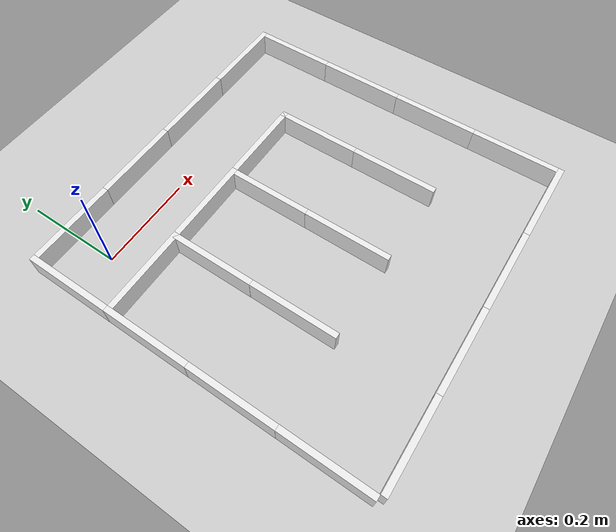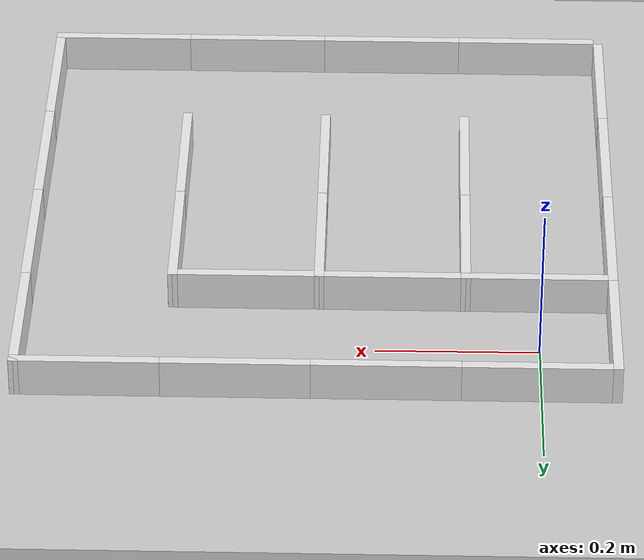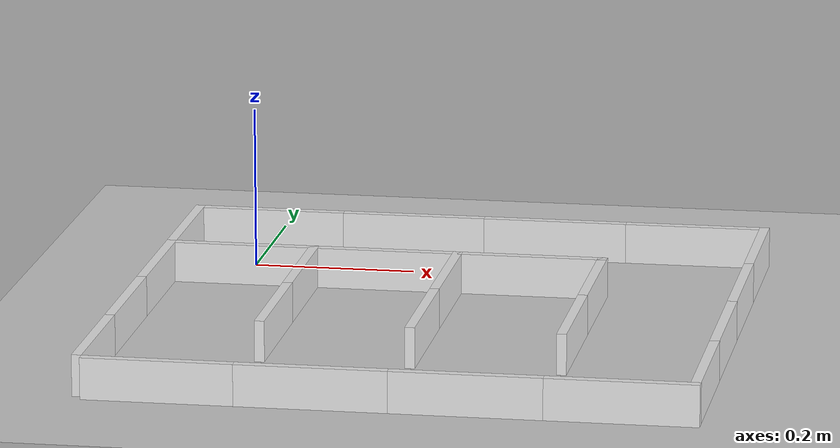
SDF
<sdf version="1.4">
 <world name="default">
  <include><uri>model://ground_plane</uri></include>
  <model name="wall">
   <pose>-0.090 0.006 0.025 0 0 1.57</pose>
   <link name="link">
    <inertial>
     <mass>10</mass>
     <inertia><ixx>1</ixx><ixy>0</ixy><ixz>0</ixz><iyy>1</iyy><iyz>0</iyz><izz>1</izz></inertia>
    </inertial>
    <collision name="collision"><geometry><box><size>0.180 0.012 0.050</size></box></geometry></collision>
    <visual name="visual">
     <geometry><box><size>0.180 0.012 0.050</size></box></geometry>
     <material>
      <script><uri>file://media/materials/scripts/gazebo.material</uri><name>Gazebo/White</name></script>
     </material>
    </visual>
    <velocity_decay><linear>0</linear><angular>0</angular></velocity_decay>
   </link>
   <static>1</static>
  </model>
  <model name="wall">
   <pose>-0.090 -0.174 0.025 0 0 1.57</pose>
   <link name="link">
    <inertial>
     <mass>10</mass>
     <inertia><ixx>1</ixx><ixy>0</ixy><ixz>0</ixz><iyy>1</iyy><iyz>0</iyz><izz>1</izz></inertia>
    </inertial>
    <collision name="collision"><geometry><box><size>0.180 0.012 0.050</size></box></geometry></collision>
    <visual name="visual">
     <geometry><box><size>0.180 0.012 0.050</size></box></geometry>
     <material>
      <script><uri>file://media/materials/scripts/gazebo.material</uri><name>Gazebo/White</name></script>
     </material>
    </visual>
    <velocity_decay><linear>0</linear><angular>0</angular></velocity_decay>
   </link>
   <static>1</static>
  </model>
  <model name="wall">
   <pose>-0.090 -0.354 0.025 0 0 1.57</pose>
   <link name="link">
    <inertial>
     <mass>10</mass>
     <inertia><ixx>1</ixx><ixy>0</ixy><ixz>0</ixz><iyy>1</iyy><iyz>0</iyz><izz>1</izz></inertia>
    </inertial>
    <collision name="collision"><geometry><box><size>0.180 0.012 0.050</size></box></geometry></collision>
    <visual name="visual">
     <geometry><box><size>0.180 0.012 0.050</size></box></geometry>
     <material>
      <script><uri>file://media/materials/scripts/gazebo.material</uri><name>Gazebo/White</name></script>
     </material>
    </visual>
    <velocity_decay><linear>0</linear><angular>0</angular></velocity_decay>
   </link>
   <static>1</static>
  </model>
  <model name="wall">
   <pose>-0.090 -0.534 0.025 0 0 1.57</pose>
   <link name="link">
    <inertial>
     <mass>10</mass>
     <inertia><ixx>1</ixx><ixy>0</ixy><ixz>0</ixz><iyy>1</iyy><iyz>0</iyz><izz>1</izz></inertia>
    </inertial>
    <collision name="collision"><geometry><box><size>0.180 0.012 0.050</size></box></geometry></collision>
    <visual name="visual">
     <geometry><box><size>0.180 0.012 0.050</size></box></geometry>
     <material>
      <script><uri>file://media/materials/scripts/gazebo.material</uri><name>Gazebo/White</name></script>
     </material>
    </visual>
    <velocity_decay><linear>0</linear><angular>0</angular></velocity_decay>
   </link>
   <static>1</static>
  </model>
  <model name="wall">
   <pose>0.006 0.090 0.025 0 0 0</pose>
   <link name="link">
    <inertial>
     <mass>10</mass>
     <inertia><ixx>1</ixx><ixy>0</ixy><ixz>0</ixz><iyy>1</iyy><iyz>0</iyz><izz>1</izz></inertia>
    </inertial>
    <collision name="collision"><geometry><box><size>0.180 0.012 0.050</size></box></geometry></collision>
    <visual name="visual">
     <geometry><box><size>0.180 0.012 0.050</size></box></geometry>
     <material>
      <script><uri>file://media/materials/scripts/gazebo.material</uri><name>Gazebo/White</name></script>
     </material>
    </visual>
    <velocity_decay><linear>0</linear><angular>0</angular></velocity_decay>
   </link>
   <static>1</static>
  </model>
  <model name="wall">
   <pose>0.186 0.090 0.025 0 0 0</pose>
   <link name="link">
    <inertial>
     <mass>10</mass>
     <inertia><ixx>1</ixx><ixy>0</ixy><ixz>0</ixz><iyy>1</iyy><iyz>0</iyz><izz>1</izz></inertia>
    </inertial>
    <collision name="collision"><geometry><box><size>0.180 0.012 0.050</size></box></geometry></collision>
    <visual name="visual">
     <geometry><box><size>0.180 0.012 0.050</size></box></geometry>
     <material>
      <script><uri>file://media/materials/scripts/gazebo.material</uri><name>Gazebo/White</name></script>
     </material>
    </visual>
    <velocity_decay><linear>0</linear><angular>0</angular></velocity_decay>
   </link>
   <static>1</static>
  </model>
  <model name="wall">
   <pose>0.366 0.090 0.025 0 0 0</pose>
   <link name="link">
    <inertial>
     <mass>10</mass>
     <inertia><ixx>1</ixx><ixy>0</ixy><ixz>0</ixz><iyy>1</iyy><iyz>0</iyz><izz>1</izz></inertia>
    </inertial>
    <collision name="collision"><geometry><box><size>0.180 0.012 0.050</size></box></geometry></collision>
    <visual name="visual">
     <geometry><box><size>0.180 0.012 0.050</size></box></geometry>
     <material>
      <script><uri>file://media/materials/scripts/gazebo.material</uri><name>Gazebo/White</name></script>
     </material>
    </visual>
    <velocity_decay><linear>0</linear><angular>0</angular></velocity_decay>
   </link>
   <static>1</static>
  </model>
  <model name="wall">
   <pose>0.546 0.090 0.025 0 0 0</pose>
   <link name="link">
    <inertial>
     <mass>10</mass>
     <inertia><ixx>1</ixx><ixy>0</ixy><ixz>0</ixz><iyy>1</iyy><iyz>0</iyz><izz>1</izz></inertia>
    </inertial>
    <collision name="collision"><geometry><box><size>0.180 0.012 0.050</size></box></geometry></collision>
    <visual name="visual">
     <geometry><box><size>0.180 0.012 0.050</size></box></geometry>
     <material>
      <script><uri>file://media/materials/scripts/gazebo.material</uri><name>Gazebo/White</name></script>
     </material>
    </visual>
    <velocity_decay><linear>0</linear><angular>0</angular></velocity_decay>
   </link>
   <static>1</static>
  </model>
  <model name="wall">
   <pose>0.630 0.006 0.025 0 0 1.57</pose>
   <link name="link">
    <inertial>
     <mass>10</mass>
     <inertia><ixx>1</ixx><ixy>0</ixy><ixz>0</ixz><iyy>1</iyy><iyz>0</iyz><izz>1</izz></inertia>
    </inertial>
    <collision name="collision"><geometry><box><size>0.180 0.012 0.050</size></box></geometry></collision>
    <visual name="visual">
     <geometry><box><size>0.180 0.012 0.050</size></box></geometry>
     <material>
      <script><uri>file://media/materials/scripts/gazebo.material</uri><name>Gazebo/White</name></script>
     </material>
    </visual>
    <velocity_decay><linear>0</linear><angular>0</angular></velocity_decay>
   </link>
   <static>1</static>
  </model>
  <model name="wall">
   <pose>0.630 -0.174 0.025 0 0 1.57</pose>
   <link name="link">
    <inertial>
     <mass>10</mass>
     <inertia><ixx>1</ixx><ixy>0</ixy><ixz>0</ixz><iyy>1</iyy><iyz>0</iyz><izz>1</izz></inertia>
    </inertial>
    <collision name="collision"><geometry><box><size>0.180 0.012 0.050</size></box></geometry></collision>
    <visual name="visual">
     <geometry><box><size>0.180 0.012 0.050</size></box></geometry>
     <material>
      <script><uri>file://media/materials/scripts/gazebo.material</uri><name>Gazebo/White</name></script>
     </material>
    </visual>
    <velocity_decay><linear>0</linear><angular>0</angular></velocity_decay>
   </link>
   <static>1</static>
  </model>
  <model name="wall">
   <pose>0.630 -0.354 0.025 0 0 1.57</pose>
   <link name="link">
    <inertial>
     <mass>10</mass>
     <inertia><ixx>1</ixx><ixy>0</ixy><ixz>0</ixz><iyy>1</iyy><iyz>0</iyz><izz>1</izz></inertia>
    </inertial>
    <collision name="collision"><geometry><box><size>0.180 0.012 0.050</size></box></geometry></collision>
    <visual name="visual">
     <geometry><box><size>0.180 0.012 0.050</size></box></geometry>
     <material>
      <script><uri>file://media/materials/scripts/gazebo.material</uri><name>Gazebo/White</name></script>
     </material>
    </visual>
    <velocity_decay><linear>0</linear><angular>0</angular></velocity_decay>
   </link>
   <static>1</static>
  </model>
  <model name="wall">
   <pose>0.630 -0.534 0.025 0 0 1.57</pose>
   <link name="link">
    <inertial>
     <mass>10</mass>
     <inertia><ixx>1</ixx><ixy>0</ixy><ixz>0</ixz><iyy>1</iyy><iyz>0</iyz><izz>1</izz></inertia>
    </inertial>
    <collision name="collision"><geometry><box><size>0.180 0.012 0.050</size></box></geometry></collision>
    <visual name="visual">
     <geometry><box><size>0.180 0.012 0.050</size></box></geometry>
     <material>
      <script><uri>file://media/materials/scripts/gazebo.material</uri><name>Gazebo/White</name></script>
     </material>
    </visual>
    <velocity_decay><linear>0</linear><angular>0</angular></velocity_decay>
   </link>
   <static>1</static>
  </model>
  <model name="wall">
   <pose>0.006 -0.630 0.025 0 0 0</pose>
   <link name="link">
    <inertial>
     <mass>10</mass>
     <inertia><ixx>1</ixx><ixy>0</ixy><ixz>0</ixz><iyy>1</iyy><iyz>0</iyz><izz>1</izz></inertia>
    </inertial>
    <collision name="collision"><geometry><box><size>0.180 0.012 0.050</size></box></geometry></collision>
    <visual name="visual">
     <geometry><box><size>0.180 0.012 0.050</size></box></geometry>
     <material>
      <script><uri>file://media/materials/scripts/gazebo.material</uri><name>Gazebo/White</name></script>
     </material>
    </visual>
    <velocity_decay><linear>0</linear><angular>0</angular></velocity_decay>
   </link>
   <static>1</static>
  </model>
  <model name="wall">
   <pose>0.186 -0.630 0.025 0 0 0</pose>
   <link name="link">
    <inertial>
     <mass>10</mass>
     <inertia><ixx>1</ixx><ixy>0</ixy><ixz>0</ixz><iyy>1</iyy><iyz>0</iyz><izz>1</izz></inertia>
    </inertial>
    <collision name="collision"><geometry><box><size>0.180 0.012 0.050</size></box></geometry></collision>
    <visual name="visual">
     <geometry><box><size>0.180 0.012 0.050</size></box></geometry>
     <material>
      <script><uri>file://media/materials/scripts/gazebo.material</uri><name>Gazebo/White</name></script>
     </material>
    </visual>
    <velocity_decay><linear>0</linear><angular>0</angular></velocity_decay>
   </link>
   <static>1</static>
  </model>
  <model name="wall">
   <pose>0.366 -0.630 0.025 0 0 0</pose>
   <link name="link">
    <inertial>
     <mass>10</mass>
     <inertia><ixx>1</ixx><ixy>0</ixy><ixz>0</ixz><iyy>1</iyy><iyz>0</iyz><izz>1</izz></inertia>
    </inertial>
    <collision name="collision"><geometry><box><size>0.180 0.012 0.050</size></box></geometry></collision>
    <visual name="visual">
     <geometry><box><size>0.180 0.012 0.050</size></box></geometry>
     <material>
      <script><uri>file://media/materials/scripts/gazebo.material</uri><name>Gazebo/White</name></script>
     </material>
    </visual>
    <velocity_decay><linear>0</linear><angular>0</angular></velocity_decay>
   </link>
   <static>1</static>
  </model>
  <model name="wall">
   <pose>0.546 -0.630 0.025 0 0 0</pose>
   <link name="link">
    <inertial>
     <mass>10</mass>
     <inertia><ixx>1</ixx><ixy>0</ixy><ixz>0</ixz><iyy>1</iyy><iyz>0</iyz><izz>1</izz></inertia>
    </inertial>
    <collision name="collision"><geometry><box><size>0.180 0.012 0.050</size></box></geometry></collision>
    <visual name="visual">
     <geometry><box><size>0.180 0.012 0.050</size></box></geometry>
     <material>
      <script><uri>file://media/materials/scripts/gazebo.material</uri><name>Gazebo/White</name></script>
     </material>
    </visual>
    <velocity_decay><linear>0</linear><angular>0</angular></velocity_decay>
   </link>
   <static>1</static>
  </model>
  <model name="wall">
   <pose>0.006 -0.090 0.025 0 0 0</pose>
   <link name="link">
    <inertial>
     <mass>10</mass>
     <inertia><ixx>1</ixx><ixy>0</ixy><ixz>0</ixz><iyy>1</iyy><iyz>0</iyz><izz>1</izz></inertia>
    </inertial>
    <collision name="collision"><geometry><box><size>0.180 0.012 0.050</size></box></geometry></collision>
    <visual name="visual">
     <geometry><box><size>0.180 0.012 0.050</size></box></geometry>
     <material>
      <script><uri>file://media/materials/scripts/gazebo.material</uri><name>Gazebo/White</name></script>
     </material>
    </visual>
    <velocity_decay><linear>0</linear><angular>0</angular></velocity_decay>
   </link>
   <static>1</static>
  </model>
  <model name="wall">
   <pose>0.186 -0.090 0.025 0 0 0</pose>
   <link name="link">
    <inertial>
     <mass>10</mass>
     <inertia><ixx>1</ixx><ixy>0</ixy><ixz>0</ixz><iyy>1</iyy><iyz>0</iyz><izz>1</izz></inertia>
    </inertial>
    <collision name="collision"><geometry><box><size>0.180 0.012 0.050</size></box></geometry></collision>
    <visual name="visual">
     <geometry><box><size>0.180 0.012 0.050</size></box></geometry>
     <material>
      <script><uri>file://media/materials/scripts/gazebo.material</uri><name>Gazebo/White</name></script>
     </material>
    </visual>
    <velocity_decay><linear>0</linear><angular>0</angular></velocity_decay>
   </link>
   <static>1</static>
  </model>
  <model name="wall">
   <pose>0.366 -0.090 0.025 0 0 0</pose>
   <link name="link">
    <inertial>
     <mass>10</mass>
     <inertia><ixx>1</ixx><ixy>0</ixy><ixz>0</ixz><iyy>1</iyy><iyz>0</iyz><izz>1</izz></inertia>
    </inertial>
    <collision name="collision"><geometry><box><size>0.180 0.012 0.050</size></box></geometry></collision>
    <visual name="visual">
     <geometry><box><size>0.180 0.012 0.050</size></box></geometry>
     <material>
      <script><uri>file://media/materials/scripts/gazebo.material</uri><name>Gazebo/White</name></script>
     </material>
    </visual>
    <velocity_decay><linear>0</linear><angular>0</angular></velocity_decay>
   </link>
   <static>1</static>
  </model>
  <model name="wall">
   <pose>0.090 -0.174 0.025 0 0 1.57</pose>
   <link name="link">
    <inertial>
     <mass>10</mass>
     <inertia><ixx>1</ixx><ixy>0</ixy><ixz>0</ixz><iyy>1</iyy><iyz>0</iyz><izz>1</izz></inertia>
    </inertial>
    <collision name="collision"><geometry><box><size>0.180 0.012 0.050</size></box></geometry></collision>
    <visual name="visual">
     <geometry><box><size>0.180 0.012 0.050</size></box></geometry>
     <material>
      <script><uri>file://media/materials/scripts/gazebo.material</uri><name>Gazebo/White</name></script>
     </material>
    </visual>
    <velocity_decay><linear>0</linear><angular>0</angular></velocity_decay>
   </link>
   <static>1</static>
  </model>
  <model name="wall">
   <pose>0.270 -0.174 0.025 0 0 1.57</pose>
   <link name="link">
    <inertial>
     <mass>10</mass>
     <inertia><ixx>1</ixx><ixy>0</ixy><ixz>0</ixz><iyy>1</iyy><iyz>0</iyz><izz>1</izz></inertia>
    </inertial>
    <collision name="collision"><geometry><box><size>0.180 0.012 0.050</size></box></geometry></collision>
    <visual name="visual">
     <geometry><box><size>0.180 0.012 0.050</size></box></geometry>
     <material>
      <script><uri>file://media/materials/scripts/gazebo.material</uri><name>Gazebo/White</name></script>
     </material>
    </visual>
    <velocity_decay><linear>0</linear><angular>0</angular></velocity_decay>
   </link>
   <static>1</static>
  </model>
  <model name="wall">
   <pose>0.450 -0.174 0.025 0 0 1.57</pose>
   <link name="link">
    <inertial>
     <mass>10</mass>
     <inertia><ixx>1</ixx><ixy>0</ixy><ixz>0</ixz><iyy>1</iyy><iyz>0</iyz><izz>1</izz></inertia>
    </inertial>
    <collision name="collision"><geometry><box><size>0.180 0.012 0.050</size></box></geometry></collision>
    <visual name="visual">
     <geometry><box><size>0.180 0.012 0.050</size></box></geometry>
     <material>
      <script><uri>file://media/materials/scripts/gazebo.material</uri><name>Gazebo/White</name></script>
     </material>
    </visual>
    <velocity_decay><linear>0</linear><angular>0</angular></velocity_decay>
   </link>
   <static>1</static>
  </model>
  <model name="wall">
   <pose>0.090 -0.354 0.025 0 0 1.57</pose>
   <link name="link">
    <inertial>
     <mass>10</mass>
     <inertia><ixx>1</ixx><ixy>0</ixy><ixz>0</ixz><iyy>1</iyy><iyz>0</iyz><izz>1</izz></inertia>
    </inertial>
    <collision name="collision"><geometry><box><size>0.180 0.012 0.050</size></box></geometry></collision>
    <visual name="visual">
     <geometry><box><size>0.180 0.012 0.050</size></box></geometry>
     <material>
      <script><uri>file://media/materials/scripts/gazebo.material</uri><name>Gazebo/White</name></script>
     </material>
    </visual>
    <velocity_decay><linear>0</linear><angular>0</angular></velocity_decay>
   </link>
   <static>1</static>
  </model>
  <model name="wall">
   <pose>0.270 -0.354 0.025 0 0 1.57</pose>
   <link name="link">
    <inertial>
     <mass>10</mass>
     <inertia><ixx>1</ixx><ixy>0</ixy><ixz>0</ixz><iyy>1</iyy><iyz>0</iyz><izz>1</izz></inertia>
    </inertial>
    <collision name="collision"><geometry><box><size>0.180 0.012 0.050</size></box></geometry></collision>
    <visual name="visual">
     <geometry><box><size>0.180 0.012 0.050</size></box></geometry>
     <material>
      <script><uri>file://media/materials/scripts/gazebo.material</uri><name>Gazebo/White</name></script>
     </material>
    </visual>
    <velocity_decay><linear>0</linear><angular>0</angular></velocity_decay>
   </link>
   <static>1</static>
  </model>
  <model name="wall">
   <pose>0.450 -0.354 0.025 0 0 1.57</pose>
   <link name="link">
    <inertial>
     <mass>10</mass>
     <inertia><ixx>1</ixx><ixy>0</ixy><ixz>0</ixz><iyy>1</iyy><iyz>0</iyz><izz>1</izz></inertia>
    </inertial>
    <collision name="collision"><geometry><box><size>0.180 0.012 0.050</size></box></geometry></collision>
    <visual name="visual">
     <geometry><box><size>0.180 0.012 0.050</size></box></geometry>
     <material>
      <script><uri>file://media/materials/scripts/gazebo.material</uri><name>Gazebo/White</name></script>
     </material>
    </visual>
    <velocity_decay><linear>0</linear><angular>0</angular></velocity_decay>
   </link>
   <static>1</static>
  </model>
 </world>
</sdf>
